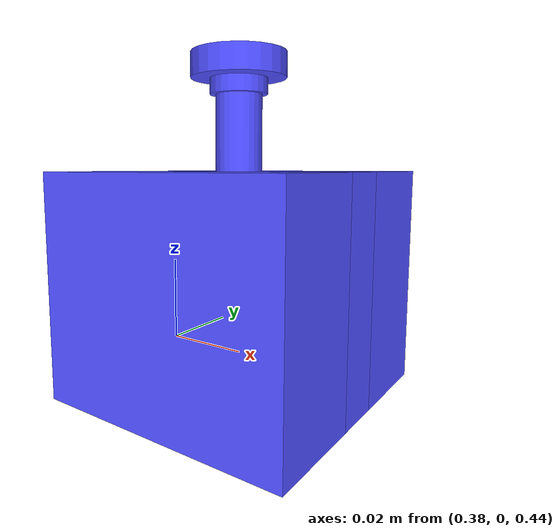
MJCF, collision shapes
<?xml version="1.0"?>
<mujoco model="buttonbox">
  <compiler angle="radian" autolimits="true"/>

  <asset>
    <texture name="T_btn" type="cube" file="textures/metal1.png"/>
    <material name="btn_col" rgba="0.3 0.3 1.0 0.5" shininess="0" specular="0"/>
    <material name="btn_red" rgba=".6 0 0 1" shininess="1" reflectance=".7" specular=".5"/>
    <material name="btn_yellow" rgba=".7 .5 0 1" shininess="1" reflectance=".7" specular=".5"/>
    <material name="btn_black" rgba=".15 .15 .15 1" shininess="1" reflectance=".7" specular=".5"/>
    <material name="btn_metal" rgba=".8 .8 .8 1" texture="T_btn" shininess="1" reflectance="1" specular="1"/>

    <mesh name="stopbot" file="objects/buttonbox/meshes/stopbot.stl" scale="0.25 0.25 0.25"/>
    <mesh name="stopbutton" file="objects/buttonbox/meshes/stopbutton.stl" scale="0.4 0.4 0.4"/>
    <mesh name="stopbuttonrim" file="objects/buttonbox/meshes/stopbuttonrim.stl" scale="0.25 0.25 0.25"/>
    <mesh name="stopbuttonrod" file="objects/buttonbox/meshes/stopbuttonrod.stl" scale="0.25 0.25 0.25"/>
    <mesh name="stoptop" file="objects/buttonbox/meshes/stoptop.stl" scale="0.25 0.25 0.25"/>
  </asset>

  <default>
    <default class="buttonbox_base">
      <joint armature="0.001" damping="2" limited="true"/>
      <geom conaffinity="0" contype="0" group="1" type="mesh"/>
    </default>
    <default class="buttonbox_col">
      <geom conaffinity="1" condim="3" contype="1" group="4" material="btn_col"
            solimp="0.99 0.99 0.01" solref="0.01 1"/>
    </default>
  </default>

  <worldbody>
    <body name="buttonbox" pos="0.4 0.0 0.46" euler="-1.5708 0 0" childclass="buttonbox_base">
      <freejoint name="buttonbox:joint"/>
      <inertial mass="0.5" pos="0 0 0" diaginertia="0.01 0.01 0.01"/>

      <!-- Visual meshes -->
      <geom material="btn_black" mesh="stopbot" pos="0 -0.015 0"/>
      <geom material="btn_metal" euler="1.57 0 0" mesh="stopbuttonrim" pos="0 -0.02225 0"/>
      <geom material="btn_yellow" mesh="stoptop" pos="0 -0.015 0"/>

      <!-- Collision geoms (box shape) -->
      <geom class="buttonbox_col" pos="0 0.003 0.018" size="0.03 0.0255 0.012" type="box"/>
      <geom class="buttonbox_col" pos="0 0.003 -0.018" size="0.03 0.0255 0.012" type="box"/>
      <geom class="buttonbox_col" pos="-0.01825 0.003 0" size="0.01175 0.0255 0.006" type="box"/>
      <geom class="buttonbox_col" pos="0.01825 0.003 0" size="0.01175 0.0255 0.006" type="box"/>

      <!-- Button (slide joint) -->
      <body name="button" childclass="buttonbox_base">
        <inertial pos="0 -0.048375 0" mass="0.01" diaginertia="0.001 0.001 0.001"/>
        <joint name="btnbox_joint" pos="0 0 0" axis="0 -1 0" type="slide"
               limited="true" range="-0.015 0" stiffness="100" damping="10"/>
        <geom material="btn_red" euler="1.57 0 0" mesh="stopbutton" pos="0 -0.0395 0" name="btnGeom"/>
        <geom material="btn_black" euler="1.57 0 0" mesh="stopbuttonrod" pos="0 -0.0315 0"/>

        <geom class="buttonbox_col" euler="1.57 0 0" pos="0 -0.032 0" size="0.00525 0.00975" type="cylinder"/>
        <geom class="buttonbox_col" euler="1.57 0 0" pos="0 -0.0415 0" size="0.0065 0.002" type="cylinder"/>
        <geom class="buttonbox_col" euler="1.57 0 0" pos="0 -0.04575 0" size="0.01075 0.00275" type="cylinder"/>
      </body>
    </body>
  </worldbody>
</mujoco>
